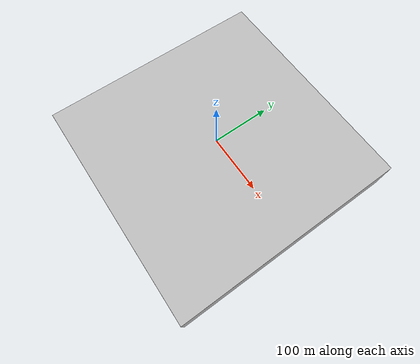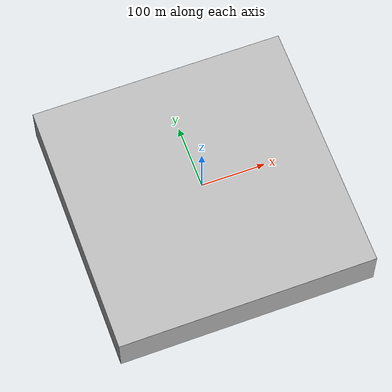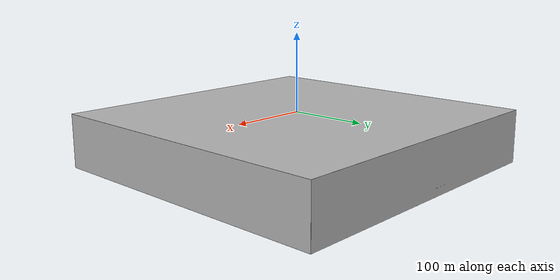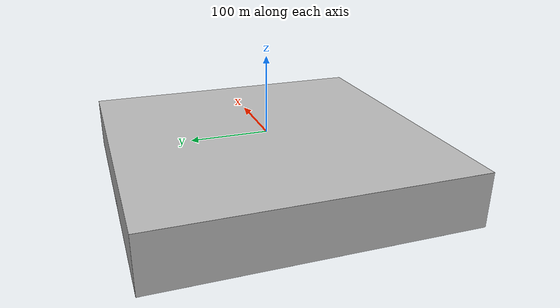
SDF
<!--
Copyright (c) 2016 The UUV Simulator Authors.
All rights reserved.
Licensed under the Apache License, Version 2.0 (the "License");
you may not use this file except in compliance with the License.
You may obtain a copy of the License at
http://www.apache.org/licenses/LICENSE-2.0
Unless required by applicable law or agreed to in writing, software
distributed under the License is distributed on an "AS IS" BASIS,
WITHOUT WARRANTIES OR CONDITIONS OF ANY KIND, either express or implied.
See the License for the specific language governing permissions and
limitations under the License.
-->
<?xml version="1.0" ?>
<sdf version="1.5">
  <model name="herkules_seabed">
    <static>true</static>
    <link name="seabed">
      <collision name="seabed">
        <pose>0 0 -60 0 0 0</pose>
        <geometry>
          <mesh>
            <uri>model://herkules_seabed/meshes/herkules_seabed.dae</uri>
            <scale>4.0 4.0 1.0</scale>
          </mesh>
        </geometry>
      </collision>

      <visual name="seabed">
        <cast_shadows>true</cast_shadows>
        <pose>0 0 -60 0 0 0</pose>
        <geometry>
          <mesh>
            <uri>model://herkules_seabed/meshes/herkules_seabed.dae</uri>
            <scale>4.0 4.0 1.0</scale>
          </mesh>
        </geometry>
        <material>
          <script>
            <uri>file://Media/materials/scripts/transdec_floor.material</uri>
            <name>UUVSimulator/SandAndStones</name>
          </script>
        </material>
      </visual>
    </link>

    <link name="ocean_link">
      <visual name="surface">
        <pose>0 0 0 0 0 0</pose>
        <geometry>
          <box>
            <size>400 400 0.1</size>
          </box>
        </geometry>
        <material>
          <script>
            <uri>file://Media/materials/scripts/water.material</uri>
            <name>UUVSimulator/StaticWater</name>
          </script>
        </material>
      </visual>
     <visual name="jiangshi">
        <pose> -33 -37 -45 1.5707 0 0 </pose>
        <geometry>
          <mesh><uri>model://robosub_2019/jiangshiTex.dae</uri><scale>1 1 1</scale></mesh>
        </geometry>
      </visual>

      <collision name="jiangshi">
        <pose> -33-37 -45 1.5707 0 0 </pose>
        <geometry>
          <mesh><uri>model://robosub_2019/jiangshiTex.dae</uri><scale>1 1 1</scale></mesh>
        </geometry>
      </collision>

     <visual name="vetalas">
        <pose> -41 -37 -45 1.5707 0 6.2831 </pose>
        <geometry>
          <mesh><uri>model://robosub_2019/vetalasTex.dae</uri><scale>1 1 1</scale></mesh>
        </geometry>
      </visual>

      <collision name="vetalas">
        <pose> -41 -37 -45 1.5707 0 6.2831 </pose>
        <geometry>
          <mesh><uri>model://robosub_2019/vetalasTex.dae</uri><scale>1 1 1</scale></mesh>
        </geometry>
      </collision>

     <visual name="draugr">
        <pose> -40 -35.3 -45 1.5707 0 4.1888 </pose>
        <geometry>
          <mesh><uri>model://robosub_2019/draugrTex.dae</uri><scale>1 1 1</scale></mesh>
        </geometry>
      </visual>

      <collision name="draugr">
        <pose> -40 -35.3 -45 1.5707 0 4.1888 </pose>
        <geometry>
          <mesh><uri>model://robosub_2019/draugrTex.dae</uri><scale>1 1 1</scale></mesh>
        </geometry>
      </collision>

     <visual name="aswang">
        <pose> -39 -37 -45 1.5707 0 2.0944 </pose>
        <geometry>
          <mesh><uri>model://robosub_2019/aswangTex.dae</uri><scale>1 1 1</scale></mesh>
        </geometry>
      </visual>

      <collision name="aswang">
        <pose> -39 -37 -45 1.5707 0 2.0944 </pose>
        <geometry>
          <mesh><uri>model://robosub_2019/aswangTex.dae</uri><scale>1 1 1</scale></mesh>
        </geometry>
      </collision>

      <visual name="bottom">
        <pose>0 0 -70.0 0 0 0</pose>
        <geometry>
          <box>
            <size>400 400 0.1</size>
          </box>
        </geometry>
        <material>
          <script>
            <uri>file://Media/materials/scripts/water.material</uri>
            <name>UUVSimulator/SeaWall</name>
          </script>
        </material>
      </visual>

      <visual name="north_wall">
        <pose>0 200 -35.0 0 0 0</pose>
        <geometry>
          <box>
            <size>400 0.1 70</size>
          </box>
        </geometry>
        <material>
          <script>
            <uri>file://Media/materials/scripts/water.material</uri>
            <name>UUVSimulator/SeaWall</name>
          </script>
        </material>
      </visual>

      <visual name="south_wall">
        <pose>0 -200 -35.0 0 0 0</pose>
        <geometry>
          <box>
            <size>400 0.1 70</size>
          </box>
        </geometry>
        <material>
          <script>
            <uri>file://Media/materials/scripts/water.material</uri>
            <name>UUVSimulator/SeaWall</name>
          </script>
        </material>
      </visual>

      <visual name="east_wall">
        <pose>200 0 -35.0 0 0 0</pose>
        <geometry>
          <box>
            <size>0.1 400 70</size>
          </box>
        </geometry>
        <material>
          <script>
            <uri>file://Media/materials/scripts/water.material</uri>
            <name>UUVSimulator/SeaWall</name>
          </script>
        </material>
      </visual>

      <visual name="west_wall">
        <pose>-200 0 -35.0 0 0 0</pose>
        <geometry>
          <box>
            <size>0.1 400 70</size>
          </box>
        </geometry>
        <material>
          <script>
            <uri>file://Media/materials/scripts/water.material</uri>
            <name>UUVSimulator/SeaWall</name>
          </script>
        </material>
      </visual>
    </link>
  </model>
</sdf>
